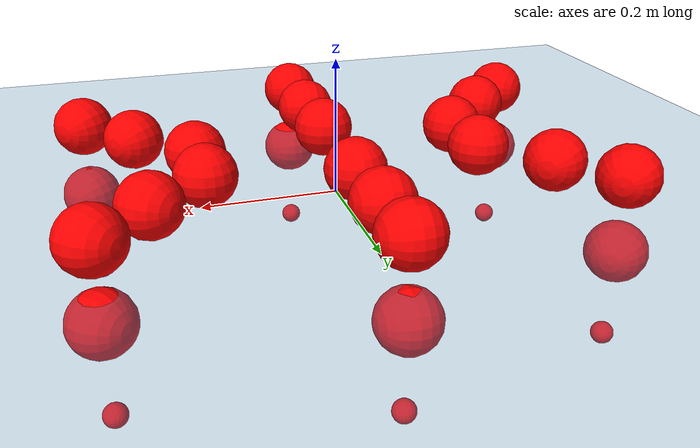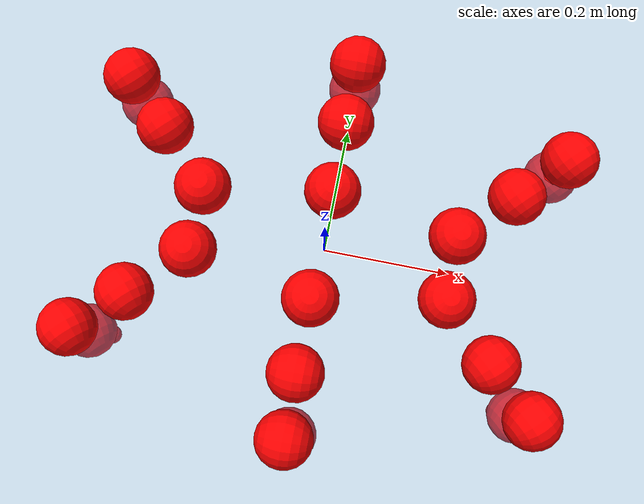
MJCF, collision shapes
<mujoco model="Golem">
  <compiler angle="radian" assetdir="assets" balanceinertia="true" inertiafromgeom="false"/>

  <option timestep="0.005" density="1.2" viscosity="2e-05"/>

  <size nkey="1"/>

  <visual>
    <quality shadowsize="8192"/>
    <map shadowclip="0.5"/>
  </visual>

  <default>
    <default class="/">
      <joint armature="0.01" damping="0.01" frictionloss="0.01"/>
      <geom contype="0" conaffinity="0" group="1" solref="-1000 -80"/>
      <site size="0.01 0.005 0.005" group="5"/>
      <general forcelimited="true" biastype="affine" gainprm="25" biasprm="0 -25 -0.5"/>
      <default class="visual">
        <geom type="mesh" group="2"/>
      </default>
      <default class="collision">
        <geom group="3"/>
      </default>
      <default class="foot">
        <geom size="0.01 0 0" condim="6" group="4" priority="1" solimp="0.015 1 0.01"/>
      </default>
      <default class="reward_collision_sphere">
        <geom group="5" rgba="1 0 0 1"/>
      </default>
    </default>
  </default>

  <asset>
    <texture type="skybox" colorspace="auto" name="//unnamed_texture_0" builtin="gradient" rgb1="0.95 0.95 0.95" rgb2="0.95 0.95 0.95" width="100" height="600"/>
    <texture type="2d" colorspace="auto" name="texplane" builtin="checker" rgb1="0.345 0.575 0.748" rgb2="0.345 0.575 0.748" markrgb="1 1 1" width="512" height="512"/>
    <material name="MatPlane" class="/" texture="texplane" texuniform="true" texrepeat="2 2" specular="0.9"/>
    <mesh name="body" class="/" file="body.stl" scale="0.001 0.001 0.001"/>
    <mesh name="coxa" class="/" file="coxa.stl" scale="0.001 0.001 0.001"/>
    <mesh name="femur" class="/" file="femur.stl" scale="0.001 0.001 0.001"/>
    <mesh name="tibia" class="/" file="tibia.stl" scale="0.001 0.001 0.001"/>
    <mesh name="tarsus" class="/" file="tarsus.stl" scale="0.001 0.001 0.001"/>
  </asset>

  <worldbody>
    <geom name="floor" class="/" size="100 100 0.125" type="plane" group="0" material="MatPlane"/>
    <light name="toplight_shadow" class="/" pos="0 0 5" dir="0.0990148 0.0990148 -0.990148" type="directional" ambient="0.04 0.04 0.04" diffuse="0.55 0.55 0.55" specular="0.12 0.12 0.12"/>
    <light name="toplight_fill" class="/" pos="0 0 5" dir="0.0990148 0.0990148 -0.990148" type="directional" castshadow="false" ambient="0.04 0.04 0.04" diffuse="0.3 0.3 0.3" specular="0.08 0.08 0.08"/>
    <body name="trunk" pos="-0.002414 -0.000299846 -0.00156702" quat="1 0.000469903 -2.92589e-05 0.000250948">
      <inertial pos="0.0014625 2.87541e-05 -0.00431522" quat="0.999911 -0.00164963 -0.013186 -0.00153192" mass="4.90316" diaginertia="0.033291 0.0067424 0.0168999"/>
      <joint name="//unnamed_joint_0" type="free"/>
      <geom name="//unnamed_geom_1" class="/" pos="0 0 0.0712507" quat="1 0 0 0" type="mesh" rgba="0.9 0.9 0.9 1" mesh="body"/>
      <site name="imu" class="/" pos="0.171634 -0.000548766 0.104716" size="0.0110435"/>
      <camera name="track" class="/" pos="0 -1.852 0" quat="0.707107 0.707107 0 0" mode="trackcom"/>
      <camera name="ego_camera" class="/" pos="0.165589 0 0.111329" quat="-0.5 -0.5 0.5 0.5"/>
      <body name="coxa_RR" pos="-0.226924 -0.0740783 0.0712331" quat="0.382572 -5.01653e-05 -4.30427e-05 -0.923926">
        <inertial pos="-0.000194959 0.000128854 -0.000647557" quat="0.999938 -0.00611116 -4.71984e-07 -0.00929737" mass="0.259811" diaginertia="0.0335502 0.00656454 0.0165548"/>
        <joint name="coxa_joint_RR" class="/" pos="0 0 0" axis="0.00109018 -0.00512349 -0.999986" stiffness="4.19384e-05" range="-3.15884 3.19298" armature="0.0103525" damping="0.00701157" frictionloss="0.0100077"/>
        <geom name="//unnamed_geom_2" class="/" type="mesh" rgba="0.2 0.2 0.2 1" mesh="coxa"/>
        <geom name="//unnamed_geom_3" class="reward_collision_sphere" size="0.044174" pos="-0.0382128 0 0"/>
        <body name="femur_RR" pos="0.0757101 0.00169465 0.00276471" quat="0.500404 -0.499718 0.500171 0.499706">
          <inertial pos="-0.000746635 0.00267642 0.00235569" quat="0.999989 -0.00446106 0.00158379 0.000265073" mass="0.269218" diaginertia="0.0347457 0.00684663 0.0177449"/>
          <joint name="femur_joint_RR" class="/" pos="0 0 0" axis="0.000117846 -0.000324936 -1" range="-3.16072 3.13636" armature="0.0110413" damping="0.0184488" frictionloss="0.012337"/>
          <geom name="//unnamed_geom_4" class="/" type="mesh" rgba="0.9 0.9 0.9 1" mesh="femur"/>
          <geom name="//unnamed_geom_5" class="reward_collision_sphere" size="0.044174"/>
          <body name="tibia_RR" pos="0.000927149 -0.0983082 -0.00216308" quat="0.000130373 1 -0.000256677 8.3897e-05">
            <inertial pos="0.00167152 -0.00189304 0.000850437" quat="0.999992 -0.00191297 -0.0024769 0.00253254" mass="0.272152" diaginertia="0.0333145 0.00683488 0.0170435"/>
            <joint name="tibia_joint_RR" class="/" pos="0 0 0" axis="-0.000514742 -0.00295319 0.999996" range="-3.13824 3.13681" armature="0.0104751" damping="0.0207976" frictionloss="0.00983309"/>
            <geom name="//unnamed_geom_6" class="/" type="mesh" rgba="0.2 0.2 0.2 1" mesh="tibia"/>
            <geom name="//unnamed_geom_7" class="reward_collision_sphere" size="0.044174"/>
            <body name="tarsus_RR" pos="0.109149 0.000213669 0.000218941" quat="1 0.000374265 -0.000151616 -0.00015664">
              <inertial pos="0.0746422 -0.00116686 0.000381574" quat="0.496796 0.497272 0.507794 0.498055" mass="0.277173" diaginertia="0.0345525 0.00682908 0.0168166"/>
              <joint name="tarsus_joint_RR" class="/" pos="0 0 0" axis="0.000534799 0.00297986 0.999995" range="-3.18809 3.1838" armature="0.0108213" damping="0.00890619" frictionloss="0.0112794"/>
              <geom name="//unnamed_geom_8" class="/" type="mesh" rgba="0.9 0.9 0.9 1" mesh="tarsus"/>
              <geom name="foot_1" class="foot" size="0.0120157" pos="0.142661 0 0" quat="0 -0.707107 0 0.707107"/>
              <geom name="//unnamed_geom_10" class="reward_collision_sphere" size="0.044174"/>
              <geom name="//unnamed_geom_11" class="reward_collision_sphere" size="0.0165653" pos="0.136929 0 0"/>
              <site name="foot_1" class="foot" pos="0.142661 0 0" quat="0 -0.707107 0 0.707107" size="0.0110435"/>
            </body>
          </body>
        </body>
      </body>
      <body name="coxa_RM" pos="-0.00283581 -0.123812 0.0734386" quat="0.707107 0.000553554 -0.000314625 -0.707106">
        <inertial pos="-0.00049168 -0.00193078 0.000293181" quat="0.99992 0.00994551 -0.00310721 0.00713854" mass="0.274936" diaginertia="0.0344838 0.00680084 0.01759"/>
        <joint name="coxa_joint_RM" class="/" pos="0 0 0" axis="0.000701594 -0.000357888 -1" range="-3.12129 3.11786" armature="0.0111011" damping="0.00366801" frictionloss="0.0115988"/>
        <geom name="//unnamed_geom_12" class="/" type="mesh" rgba="0.2 0.2 0.2 1" mesh="coxa"/>
        <geom name="//unnamed_geom_13" class="reward_collision_sphere" size="0.044174" pos="-0.0382128 0 0"/>
        <body name="femur_RM" pos="0.0748954 -0.000425566 -0.00275489" quat="0.499375 -0.500121 0.499435 0.501067">
          <inertial pos="-0.0026583 -0.00198199 -0.00234583" quat="0.99999 0.00222241 0.0037658 0.00103664" mass="0.278421" diaginertia="0.0339091 0.00678802 0.017343"/>
          <joint name="femur_joint_RM" class="/" pos="0 0 0" axis="0.000520034 -0.00889624 -0.99996" range="-3.15226 3.19341" armature="0.0113776" damping="0.0161632" frictionloss="0.00951538"/>
          <geom name="//unnamed_geom_14" class="/" type="mesh" rgba="0.9 0.9 0.9 1" mesh="femur"/>
          <geom name="//unnamed_geom_15" class="reward_collision_sphere" size="0.044174"/>
          <body name="tibia_RM" pos="-0.00266543 -0.097495 0.00217414" quat="-0.000208851 1 -0.000154847 0.000655578">
            <inertial pos="-0.000780959 -0.000835625 0.000636761" quat="1 -0.000112172 2.16484e-05 -0.000316425" mass="0.269625" diaginertia="0.0347993 0.00702178 0.0170078"/>
            <joint name="tibia_joint_RM" class="/" pos="0 0 0" axis="0.0123836 -0.00374881 0.999916" range="-3.13001 3.0833" armature="0.011735" damping="0" frictionloss="0.0116503"/>
            <geom name="//unnamed_geom_16" class="/" type="mesh" rgba="0.2 0.2 0.2 1" mesh="tibia"/>
            <geom name="//unnamed_geom_17" class="reward_collision_sphere" size="0.044174"/>
            <body name="tarsus_RM" pos="0.108232 0.00171624 -0.00244658" quat="1 8.47655e-05 0.000139852 -0.000552365">
              <inertial pos="0.0771399 0.000943168 0.00268766" quat="0.496701 0.492218 0.500712 0.510193" mass="0.270308" diaginertia="0.0345019 0.0068086 0.0166056"/>
              <joint name="tarsus_joint_RM" class="/" pos="0 0 0" axis="0.0011697 -8.00077e-05 0.999999" range="-3.19531 3.08686" armature="0.0112008" damping="0.00803961" frictionloss="0.0113864"/>
              <geom name="//unnamed_geom_18" class="/" type="mesh" rgba="0.9 0.9 0.9 1" mesh="tarsus"/>
              <geom name="foot_2" class="foot" size="0.0110945" pos="0.142661 0 0" quat="0 -0.707107 0 0.707107"/>
              <geom name="//unnamed_geom_20" class="reward_collision_sphere" size="0.044174"/>
              <geom name="//unnamed_geom_21" class="reward_collision_sphere" size="0.0165653" pos="0.136929 0 0"/>
              <site name="foot_2" class="foot" pos="0.142661 0 0" quat="0 -0.707107 0 0.707107" size="0.0110435"/>
            </body>
          </body>
        </body>
      </body>
      <body name="coxa_RF" pos="0.226423 -0.0754958 0.0697366" quat="0.92405 -0.000200175 -0.00054827 -0.382271">
        <inertial pos="0.000683369 -0.00212349 -0.00066757" quat="0.999999 0.0009486 6.99573e-05 0.000981679" mass="0.277374" diaginertia="0.0343055 0.00688536 0.0173069"/>
        <joint name="coxa_joint_RF" class="/" pos="0 0 0" axis="0.0043804 0.00455338 -0.99998" range="-3.13757 3.18758" armature="0.0115276" damping="0" frictionloss="0.0108293"/>
        <geom name="//unnamed_geom_22" class="/" type="mesh" rgba="0.2 0.2 0.2 1" mesh="coxa"/>
        <geom name="//unnamed_geom_23" class="reward_collision_sphere" size="0.044174" pos="-0.0382128 0 0"/>
        <body name="femur_RF" pos="0.0779662 -0.00124257 -0.00295909" quat="0.499944 -0.500087 0.500036 0.499933">
          <inertial pos="-0.00108757 -3.72737e-05 0.00281296" quat="0.999998 0.00124596 0.000562042 0.00162522" mass="0.266168" diaginertia="0.0337491 0.00674803 0.0174437"/>
          <joint name="femur_joint_RF" class="/" pos="0 0 0" axis="0.00211789 -0.000418025 -0.999998" range="-3.08603 3.12216" armature="0.0108126" damping="0.011801" frictionloss="0.00960109"/>
          <geom name="//unnamed_geom_24" class="/" type="mesh" rgba="0.9 0.9 0.9 1" mesh="femur"/>
          <geom name="//unnamed_geom_25" class="reward_collision_sphere" size="0.044174"/>
          <body name="tibia_RF" pos="-0.00357467 -0.0996859 0.00112409" quat="-0.000111571 1 -1.82259e-05 0.000336753">
            <inertial pos="0.00258306 -0.00129388 5.6964e-06" quat="0.999921 0.00678975 0.00285552 -0.0102303" mass="0.271679" diaginertia="0.0328064 0.00662418 0.0171901"/>
            <joint name="tibia_joint_RF" class="/" pos="0 0 0" axis="0.00935508 0.00780218 0.999926" stiffness="0.000685916" range="-3.13699 3.14088" armature="0.0105501" damping="0.00919792" frictionloss="0.0113484"/>
            <geom name="//unnamed_geom_26" class="/" type="mesh" rgba="0.2 0.2 0.2 1" mesh="tibia"/>
            <geom name="//unnamed_geom_27" class="reward_collision_sphere" size="0.044174"/>
            <body name="tarsus_RF" pos="0.113325 -0.000428603 -0.0019334" quat="1 0.000215451 -0.000844209 -0.000340847">
              <inertial pos="0.0778017 -0.00262723 0.000423734" quat="0.499937 0.50007 0.500023 0.49997" mass="0.261699" diaginertia="0.0336161 0.00659863 0.0174961"/>
              <joint name="tarsus_joint_RF" class="/" pos="0 0 0" axis="-0.0151676 0.00395058 0.999877" range="-3.19346 3.1373" armature="0.0109835" damping="0.018824" frictionloss="0.0111811"/>
              <geom name="//unnamed_geom_28" class="/" type="mesh" rgba="0.9 0.9 0.9 1" mesh="tarsus"/>
              <geom name="foot_3" class="foot" size="0.0106095" pos="0.142661 0 0" quat="0 -0.707107 0 0.707107"/>
              <geom name="//unnamed_geom_30" class="reward_collision_sphere" size="0.044174"/>
              <geom name="//unnamed_geom_31" class="reward_collision_sphere" size="0.0165653" pos="0.136929 0 0"/>
              <site name="foot_3" class="foot" pos="0.142661 0 0" quat="0 -0.707107 0 0.707107" size="0.0110435"/>
            </body>
          </body>
        </body>
      </body>
      <body name="coxa_LR" pos="-0.22533 0.0791029 0.0727184" quat="0.382473 -0.000499016 0.000265377 0.923967">
        <inertial pos="0.000973364 0.00045764 0.0029983" quat="0.999993 0.00363577 0.000150754 -0.000685098" mass="0.271417" diaginertia="0.0334762 0.00686101 0.0165765"/>
        <joint name="coxa_joint_LR" class="/" pos="0 0 0" axis="0.00153493 -0.00259752 -0.999995" range="-3.16489 3.13976" armature="0.0106144" damping="0" frictionloss="0.00958547"/>
        <geom name="//unnamed_geom_32" class="/" type="mesh" rgba="0.2 0.2 0.2 1" mesh="coxa"/>
        <geom name="//unnamed_geom_33" class="reward_collision_sphere" size="0.044174" pos="-0.0382128 0 0"/>
        <body name="femur_LR" pos="0.0758656 -0.00360536 -0.000378111" quat="0.500036 -0.500096 0.499781 0.500087">
          <inertial pos="0.00276971 -0.0011921 0.00246832" quat="0.999999 0.000983039 -0.000864886 0.00058502" mass="0.260113" diaginertia="0.0334435 0.00673411 0.01718"/>
          <joint name="femur_joint_LR" class="/" pos="0 0 0" axis="-0.00054539 -0.00191356 0.999998" range="-3.18841 3.08484" armature="0.00958913" damping="0" frictionloss="0.0113469"/>
          <geom name="//unnamed_geom_34" class="/" type="mesh" rgba="0.9 0.9 0.9 1" mesh="femur"/>
          <geom name="//unnamed_geom_35" class="reward_collision_sphere" size="0.044174"/>
          <body name="tibia_LR" pos="0.00365213 -0.100043 -0.000325948" quat="-0.000636674 1 0.000395383 0.000106347">
            <inertial pos="0.00150102 -0.00262734 0.000827679" quat="0.999999 -0.000444381 -0.0002789 -0.000857422" mass="0.277116" diaginertia="0.0330523 0.00700969 0.0165463"/>
            <joint name="tibia_joint_LR" class="/" pos="0 0 0" axis="0.00756302 -0.0118862 -0.999901" range="-3.1631 3.08337" armature="0.0109172" damping="0.00646664" frictionloss="0.0112845"/>
            <geom name="//unnamed_geom_36" class="/" type="mesh" rgba="0.2 0.2 0.2 1" mesh="tibia"/>
            <geom name="//unnamed_geom_37" class="reward_collision_sphere" size="0.044174"/>
            <body name="tarsus_LR" pos="0.115712 -0.000875934 -0.0020231" quat="0.999999 -0.000123636 0.00124493 0.000572425">
              <inertial pos="0.0744418 -0.0024664 0.000224074" quat="0.499113 0.500392 0.500391 0.500103" mass="0.271421" diaginertia="0.0339592 0.00664193 0.0176765"/>
              <joint name="tarsus_joint_LR" class="/" pos="0 0 0" axis="0.00174368 -0.000645735 -0.999998" range="-3.14536 3.13984" armature="0.0114985" damping="0.0292548" frictionloss="0.0125724"/>
              <geom name="//unnamed_geom_38" class="/" type="mesh" rgba="0.9 0.9 0.9 1" mesh="tarsus"/>
              <geom name="foot_4" class="foot" size="0.010883" pos="0.142661 0 0" quat="0.707107 0 -0.707107 0"/>
              <geom name="//unnamed_geom_40" class="reward_collision_sphere" size="0.044174"/>
              <geom name="//unnamed_geom_41" class="reward_collision_sphere" size="0.0165653" pos="0.136929 0 0"/>
              <site name="foot_4" class="foot" pos="0.142661 0 0" quat="0.707107 0 -0.707107 0" size="0.0110435"/>
            </body>
          </body>
        </body>
      </body>
      <body name="coxa_LM" pos="-0.000947957 0.121767 0.0714493" quat="0.706983 -0.000484818 0.00049891 0.70723">
        <inertial pos="0.00300937 -0.000317834 0.000806374" quat="0.999999 -0.000679064 0.000275748 -0.0012011" mass="0.259601" diaginertia="0.0332677 0.00656288 0.0166275"/>
        <joint name="coxa_joint_LM" class="/" pos="0 0 0" axis="0.00187492 0.001946 -0.999996" stiffness="0.00230461" range="-3.15874 3.14391" armature="0.0113965" damping="0" frictionloss="0.0098963"/>
        <geom name="//unnamed_geom_42" class="/" type="mesh" rgba="0.2 0.2 0.2 1" mesh="coxa"/>
        <geom name="//unnamed_geom_43" class="reward_collision_sphere" size="0.044174" pos="-0.0382128 0 0"/>
        <body name="femur_LM" pos="0.0724009 0.000154605 0.0017245" quat="0.500157 -0.500008 0.499827 0.500008">
          <inertial pos="0.00219088 -0.000572061 -0.00176117" quat="1 -0.000140029 -0.000123865 -2.92727e-05" mass="0.276683" diaginertia="0.0336055 0.00706868 0.0182381"/>
          <joint name="femur_joint_LM" class="/" pos="0 0 0" axis="-0.0082714 -0.0114806 0.9999" range="-3.08672 3.1138" armature="0.0114911" damping="0.00650416" frictionloss="0.0110642"/>
          <geom name="//unnamed_geom_44" class="/" type="mesh" rgba="0.9 0.9 0.9 1" mesh="femur"/>
          <geom name="//unnamed_geom_45" class="reward_collision_sphere" size="0.044174"/>
          <body name="tibia_LM" pos="-0.00116999 -0.0964502 -0.000899093" quat="2.61436e-06 1 6.13853e-05 -4.64923e-05">
            <inertial pos="-0.00265355 0.00011923 0.000284833" quat="1 9.49637e-05 5.75275e-06 3.05209e-05" mass="0.26497" diaginertia="0.0335203 0.00679343 0.0174391"/>
            <joint name="tibia_joint_LM" class="/" pos="0 0 0" axis="0.000767574 0.000333889 -1" stiffness="0.01054" range="-3.14755 3.11565" armature="0.00967526" damping="0.0105288" frictionloss="0.00985965"/>
            <geom name="//unnamed_geom_46" class="/" type="mesh" rgba="0.2 0.2 0.2 1" mesh="tibia"/>
            <geom name="//unnamed_geom_47" class="reward_collision_sphere" size="0.044174"/>
            <body name="tarsus_LM" pos="0.115488 0.00247151 -0.000766536" quat="1 7.95366e-05 4.50122e-05 3.76615e-05">
              <inertial pos="0.073991 0.00063466 -0.00214222" quat="0.501132 0.502045 0.488762 0.507868" mass="0.266638" diaginertia="0.0324786 0.00680976 0.0166091"/>
              <joint name="tarsus_joint_LM" class="/" pos="0 0 0" axis="-0.00192578 -0.00788515 -0.999967" stiffness="0.00216487" range="-3.08677 3.13795" armature="0.0110221" damping="0.0178074" frictionloss="0.0106349"/>
              <geom name="//unnamed_geom_48" class="/" type="mesh" rgba="0.9 0.9 0.9 1" mesh="tarsus"/>
              <geom name="foot_5" class="foot" size="0.0119833" pos="0.142661 0 0" quat="0.707107 0 -0.707107 0"/>
              <geom name="//unnamed_geom_50" class="reward_collision_sphere" size="0.044174"/>
              <geom name="//unnamed_geom_51" class="reward_collision_sphere" size="0.0165653" pos="0.136929 0 0"/>
              <site name="foot_5" class="foot" pos="0.142661 0 0" quat="0.707107 0 -0.707107 0" size="0.0110435"/>
            </body>
          </body>
        </body>
      </body>
      <body name="coxa_LF" pos="0.225811 0.0768498 0.0718092" quat="0.923902 0.000244547 0.000143274 0.382629">
        <inertial pos="0.000251732 -0.00229918 -7.95936e-05" quat="0.999904 0.00864407 0.00229697 0.0105754" mass="0.275876" diaginertia="0.0343789 0.00707924 0.0178121"/>
        <joint name="coxa_joint_LF" class="/" pos="0 0 0" axis="0.000287431 0.00593823 -0.999982" range="-3.08748 3.14263" armature="0.0119448" damping="0.0159587" frictionloss="0.00951337"/>
        <geom name="//unnamed_geom_52" class="/" type="mesh" rgba="0.2 0.2 0.2 1" mesh="coxa"/>
        <geom name="//unnamed_geom_53" class="reward_collision_sphere" size="0.044174" pos="-0.0382128 0 0"/>
        <body name="femur_LF" pos="0.0726718 -0.00136053 0.00191143" quat="0.500095 -0.499794 0.50032 0.499791">
          <inertial pos="0.00060891 0.00214344 -0.0027465" quat="0.999994 -0.00348803 -0.000451843 -0.00011953" mass="0.274992" diaginertia="0.0344567 0.00699994 0.0169393"/>
          <joint name="femur_joint_LF" class="/" pos="0 0 0" axis="-9.59024e-05 -0.000257778 1" range="-3.1228 3.13547" armature="0.0123072" damping="0" frictionloss="0.0112388"/>
          <geom name="//unnamed_geom_54" class="/" type="mesh" rgba="0.9 0.9 0.9 1" mesh="femur"/>
          <geom name="//unnamed_geom_55" class="reward_collision_sphere" size="0.044174"/>
          <body name="tibia_LF" pos="0.000381576 -0.102016 0.00102783" quat="1.08451e-05 1 -2.7435e-05 -0.000111093">
            <inertial pos="0.00259743 0.00273712 0.00225194" quat="1 0.000144785 0.000261552 -0.000432666" mass="0.270829" diaginertia="0.0335308 0.00703068 0.0176862"/>
            <joint name="tibia_joint_LF" class="/" pos="0 0 0" axis="-0.00302165 0.000510361 -0.999995" stiffness="0.00802134" range="-3.09127 3.08551" armature="0.0115534" damping="0.00460419" frictionloss="0.00980615"/>
            <geom name="//unnamed_geom_56" class="/" type="mesh" rgba="0.2 0.2 0.2 1" mesh="tibia"/>
            <geom name="//unnamed_geom_57" class="reward_collision_sphere" size="0.044174"/>
            <body name="tarsus_LF" pos="0.110125 0.00205209 -0.000441049" quat="1 -6.79203e-05 -0.000108625 9.69774e-05">
              <inertial pos="0.0745031 0.000752503 0.00260241" quat="0.50371 0.495147 0.50924 0.491712" mass="0.270948" diaginertia="0.0348396 0.00682595 0.0176733"/>
              <joint name="tarsus_joint_LF" class="/" pos="0 0 0" axis="-0.000373757 0.0033434 -0.999994" stiffness="0.00717078" range="-3.19533 3.08643" armature="0.0121301" damping="0.0117093" frictionloss="0.0120597"/>
              <geom name="//unnamed_geom_58" class="/" type="mesh" rgba="0.9 0.9 0.9 1" mesh="tarsus"/>
              <geom name="foot_6" class="foot" size="0.0118635" pos="0.142661 0 0" quat="0.707107 0 -0.707107 0"/>
              <geom name="//unnamed_geom_60" class="reward_collision_sphere" size="0.044174"/>
              <geom name="//unnamed_geom_61" class="reward_collision_sphere" size="0.0165653" pos="0.136929 0 0"/>
              <site name="foot_6" class="foot" pos="0.142661 0 0" quat="0.707107 0 -0.707107 0" size="0.0110435"/>
            </body>
          </body>
        </body>
      </body>
    </body>
  </worldbody>

  <contact>
    <pair class="/" geom1="floor" geom2="foot_1" name="//unnamed_contact_0"/>
    <pair class="/" geom1="floor" geom2="foot_2" name="//unnamed_contact_1"/>
    <pair class="/" geom1="floor" geom2="foot_3" name="//unnamed_contact_2"/>
    <pair class="/" geom1="floor" geom2="foot_4" name="//unnamed_contact_3"/>
    <pair class="/" geom1="floor" geom2="foot_5" name="//unnamed_contact_4"/>
    <pair class="/" geom1="floor" geom2="foot_6" name="//unnamed_contact_5"/>
  </contact>

  <actuator>
    <general name="coxa_joint_RR" class="/" joint="coxa_joint_RR" forcerange="-8.3073 8.3073" gainprm="28.2392" biasprm="0 -28.2392 -0.589644"/>
    <general name="femur_joint_RR" class="/" joint="femur_joint_RR" forcerange="-8.22296 8.22296" gainprm="28.2392" biasprm="0 -28.2392 -0.589644"/>
    <general name="tibia_joint_RR" class="/" joint="tibia_joint_RR" forcerange="-8.0988 8.0988" gainprm="28.2392" biasprm="0 -28.2392 -0.589644"/>
    <general name="tarsus_joint_RR" class="/" joint="tarsus_joint_RR" forcerange="-7.8748 7.8748" gainprm="28.2392" biasprm="0 -28.2392 -0.589644"/>
    <general name="coxa_joint_RM" class="/" joint="coxa_joint_RM" forcerange="-8.22899 8.22899" gainprm="28.2392" biasprm="0 -28.2392 -0.589644"/>
    <general name="femur_joint_RM" class="/" joint="femur_joint_RM" forcerange="-8.22454 8.22454" gainprm="28.2392" biasprm="0 -28.2392 -0.589644"/>
    <general name="tibia_joint_RM" class="/" joint="tibia_joint_RM" forcerange="-8.11586 8.11586" gainprm="28.2392" biasprm="0 -28.2392 -0.589644"/>
    <general name="tarsus_joint_RM" class="/" joint="tarsus_joint_RM" forcerange="-7.26072 7.26072" gainprm="28.2392" biasprm="0 -28.2392 -0.589644"/>
    <general name="coxa_joint_RF" class="/" joint="coxa_joint_RF" forcerange="-8.19063 8.19063" gainprm="28.2392" biasprm="0 -28.2392 -0.589644"/>
    <general name="femur_joint_RF" class="/" joint="femur_joint_RF" forcerange="-8.08046 8.08046" gainprm="28.2392" biasprm="0 -28.2392 -0.589644"/>
    <general name="tibia_joint_RF" class="/" joint="tibia_joint_RF" forcerange="-8.12474 8.12474" gainprm="28.2392" biasprm="0 -28.2392 -0.589644"/>
    <general name="tarsus_joint_RF" class="/" joint="tarsus_joint_RF" forcerange="-8.25413 8.25413" gainprm="28.2392" biasprm="0 -28.2392 -0.589644"/>
    <general name="coxa_joint_LR" class="/" joint="coxa_joint_LR" forcerange="-8.00208 8.00208" gainprm="28.2392" biasprm="0 -28.2392 -0.589644"/>
    <general name="femur_joint_LR" class="/" joint="femur_joint_LR" forcerange="-7.22092 7.22092" gainprm="28.2392" biasprm="0 -28.2392 -0.589644"/>
    <general name="tibia_joint_LR" class="/" joint="tibia_joint_LR" forcerange="-7.73703 7.73703" gainprm="28.2392" biasprm="0 -28.2392 -0.589644"/>
    <general name="tarsus_joint_LR" class="/" joint="tarsus_joint_LR" forcerange="-8.09673 8.09673" gainprm="28.2392" biasprm="0 -28.2392 -0.589644"/>
    <general name="coxa_joint_LM" class="/" joint="coxa_joint_LM" forcerange="-7.896 7.896" gainprm="28.2392" biasprm="0 -28.2392 -0.589644"/>
    <general name="femur_joint_LM" class="/" joint="femur_joint_LM" forcerange="-7.66232 7.66232" gainprm="28.2392" biasprm="0 -28.2392 -0.589644"/>
    <general name="tibia_joint_LM" class="/" joint="tibia_joint_LM" forcerange="-8.03034 8.03034" gainprm="28.2392" biasprm="0 -28.2392 -0.589644"/>
    <general name="tarsus_joint_LM" class="/" joint="tarsus_joint_LM" forcerange="-8.64923 8.64923" gainprm="28.2392" biasprm="0 -28.2392 -0.589644"/>
    <general name="coxa_joint_LF" class="/" joint="coxa_joint_LF" forcerange="-8.10113 8.10113" gainprm="28.2392" biasprm="0 -28.2392 -0.589644"/>
    <general name="femur_joint_LF" class="/" joint="femur_joint_LF" forcerange="-8.83932 8.83932" gainprm="28.2392" biasprm="0 -28.2392 -0.589644"/>
    <general name="tibia_joint_LF" class="/" joint="tibia_joint_LF" forcerange="-8.09955 8.09955" gainprm="28.2392" biasprm="0 -28.2392 -0.589644"/>
    <general name="tarsus_joint_LF" class="/" joint="tarsus_joint_LF" forcerange="-7.39993 7.39993" gainprm="28.2392" biasprm="0 -28.2392 -0.589644"/>
  </actuator>

  <sensor>
    <gyro site="imu" name="imu_angular_velocity"/>
    <velocimeter site="imu" name="imu_linear_velocity"/>
    <framelinvel objtype="site" objname="foot_1" name="foot_1_global_linear_velocity"/>
    <framelinvel objtype="site" objname="foot_2" name="foot_2_global_linear_velocity"/>
    <framelinvel objtype="site" objname="foot_3" name="foot_3_global_linear_velocity"/>
    <framelinvel objtype="site" objname="foot_4" name="foot_4_global_linear_velocity"/>
    <framelinvel objtype="site" objname="foot_5" name="foot_5_global_linear_velocity"/>
    <framelinvel objtype="site" objname="foot_6" name="foot_6_global_linear_velocity"/>
  </sensor>

  <keyframe>
    <key name="home" qpos="0 0 0.1457 1 0 0 0 0 0 0 0 0 0 0 0 0 0 0 0 0 0 0 0 0 0 0 0 0 0 0 0"/>
  </keyframe>
</mujoco>
